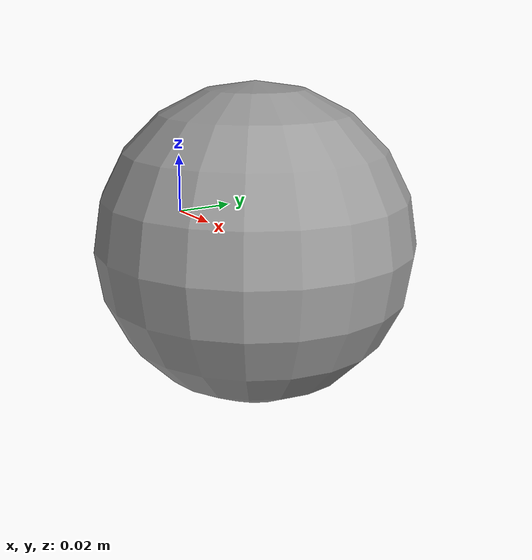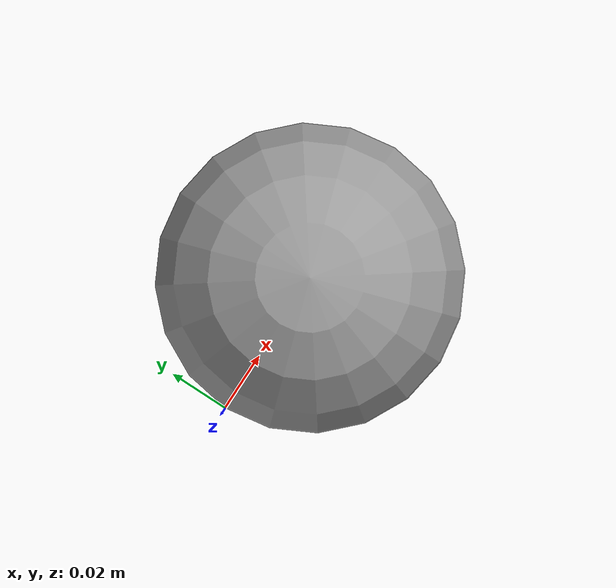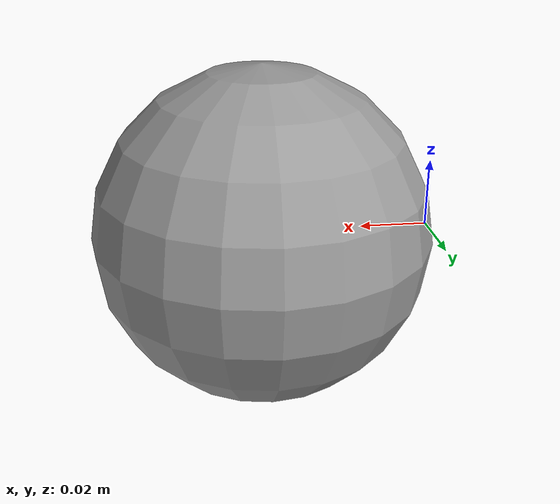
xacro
<?xml version="1.0"?>

<robot xmlns:xacro="http://www.ros.org/wiki/xacro" name="ball">

	<xacro:macro name="ball" params="d mass">
		<link name='ball'>
			<inertial>
				<origin xyz="${d} 0 0 " />
				<mass value="${mass}"/>
				<inertia ixx="${mass* (d/2)**2 * (2/5)}" ixy="0.00" ixz="0.00" iyy="${mass* (d/2)**2 * (2/5)}" iyz="0.00" izz="${mass* (d/2)**2 * (2/5)}"/>
			</inertial>

			<collision name='collision'>
				<origin xyz="${d} 0 0 "/>
				<geometry>
					<sphere radius="${d}"/>
				</geometry>
				<max_contacts>10</max_contacts>
				<surface>
					<contact>
						<ode/>
					</contact>
					<bounce/>
					<friction>
						<torsional>
							<ode/>
						</torsional>
						<ode/>
					</friction>
				</surface>
			</collision>

			<visual name='visual'>
				<origin xyz="${d} 0 0 " />
				<geometry>
					<sphere radius="${d}"/>
				</geometry>
			</visual>

			<self_collide>0</self_collide>
			<enable_wind>0</enable_wind>
			<kinematic>0</kinematic>
		</link>
	</xacro:macro>

	<xacro:macro name="link_gazebo" params="name">
		<gazebo reference="${name}">
			<selfCollide>true</selfCollide>
			<material>Grey</material>
		</gazebo>
	</xacro:macro>

	<link name="base_link"/>
	<xacro:ball d="0.05" mass=".1"/>
	<joint name="cup_fixed" type="fixed">
		<origin xyz="0 0 0" rpy="0 0 0" />
		<parent link="base_link"/>
		<child link="ball"/>
	</joint>
	<xacro:link_gazebo name="ball"/>

</robot>
